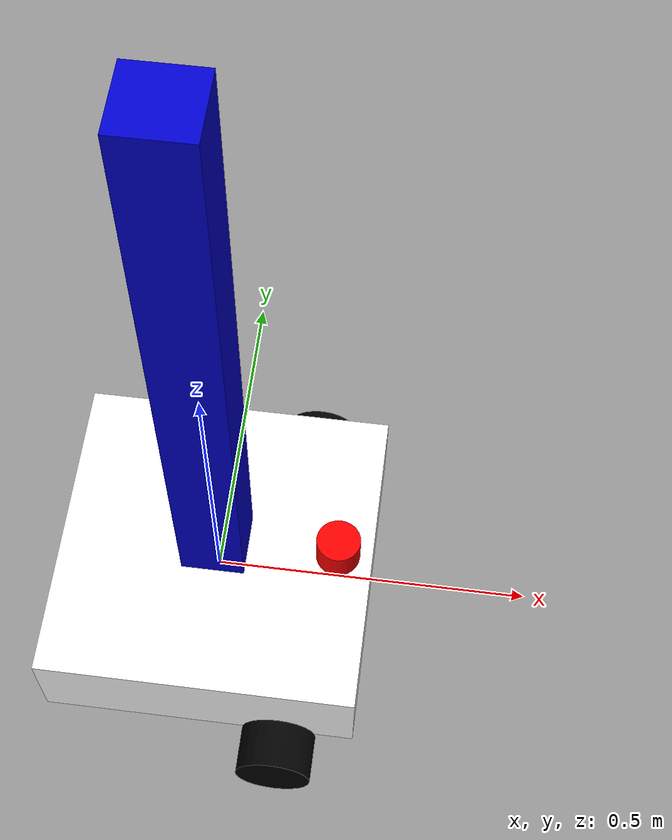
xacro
<?xml version="1.0"?>

<robot xmlns:xacro="http://www.ros.org/wiki/xacro" >

    <material name="blue">
      <color rgba="0 0 0.8 1"/>
    </material>
    <material name="white">
      <color rgba="1 1 1 1"/>
    </material>
    <material name="black">
      <color rgba="0 0 0 1"/>
    </material>
    <material name="green">
        <color rgba="0 0.8 0 1"/>
    </material>
    <material name="red">
        <color rgba="1 0 0 1"/>
    </material>

    <!--INERTIAL BOX MACRO-->
    <xacro:macro name="inertial_box" params="mass x y z">
        <inertial>
            <origin xyz="0.0 0.0 0.0" rpy="0.0 0.0 0.0"/>
            <mass value="${mass}" />
            <inertia ixx="${(1/12) * mass * (y*y+z*z)}" ixy="0.0" ixz="0.0"
                    iyy="${(1/12) * mass * (x*x+z*z)}" iyz="0.0"
                    izz="${(1/12) * mass * (x*x+y*y)}" />
        </inertial>
    </xacro:macro>
    <!--INERTIAL CYLINDER MACRO-->
    <xacro:macro name="inertial_cylinder" params="mass length radius">
        <inertial>
            <origin xyz="0.0 0.0 0.0" rpy="0.0 0.0 0.0"/>
            <mass value="${mass}" />
            <inertia ixx="${(1/12) * mass * (3*radius*radius + length*length)}" ixy="0.0" ixz="0.0"
                    iyy="${(1/12) * mass * (3*radius*radius + length*length)}" iyz="0.0"
                    izz="${(1/2) * mass * (radius*radius)}" />
        </inertial>
    </xacro:macro>
    <!--INERTIAL SPHERE MACRO-->
    <xacro:macro name="inertial_sphere" params="mass radius">
        <inertial>
            <origin xyz="0.0 0.0 0.0" rpy="0.0 0.0 0.0"/>
            <mass value="${mass}" />
            <inertia ixx="${(2/5) * mass * (radius*radius)}" ixy="0.0" ixz="0.0"
                    iyy="${(2/5) * mass * (radius*radius)}" iyz="0.0"
                    izz="${(2/5) * mass * (radius*radius)}" />
        </inertial>
    </xacro:macro>

    <!--BASE_LINK-->
    <link name="base_link">

    </link>

    <!--CHASSIS OF THE ROBOT-->
    <link name="chassis_link">
        <visual>
            <geometry>
                <box size="0.5 0.5 0.15"/>
            </geometry>
            <material name="white"/>
            <origin xyz="0.0 0.0 0.0" rpy="0.0 0.0 0.0"/>
        </visual>
        <collision>
            <geometry>
                <box size="0.5 0.5 0.15"/>
            </geometry>
            <origin xyz="0.0 0.0 0.0" rpy="0.0 0.0 0.0"/>
        </collision>
        <xacro:inertial_box mass="5" x="0.5" y="0.5" z="0.15" />
    </link>

    <joint name="chassis_joint" type="fixed">
        <origin xyz="0 0 0" rpy="0 0 0" />
        <parent link="base_link" />
        <child link="chassis_link" />
        <axis xyz="0 0 0" />
    </joint>

    <gazebo reference="chassis_link">
      <material>Gazebo/Orange</material>
    </gazebo>

    <!--RIGHT WHEEL-->
    <link name="right_wheel">
        <visual>
            <geometry>
                <cylinder radius="0.06" length="0.075"/>
            </geometry>
            <material name="black"/>
            <origin rpy="1.5708 0 0" xyz="0 0 0"/>
        </visual>
        <collision>
            <geometry>
            <cylinder radius="0.06" length="0.075"/>
            </geometry>
            <origin rpy="1.5708 0 0" xyz="0 0 0"/>
        </collision>
        <xacro:inertial_cylinder mass="0.2" length="0.075" radius="0.06" />
    </link>

    <joint name="right_wheel_joint" type="continuous">
        <origin xyz="0.13 0.2875 -0.09" rpy="0 0 0" />
        <parent link="base_link" />
        <child link="right_wheel" />
        <axis xyz="0 1 0" />
    </joint>

    <gazebo reference="right_wheel">
      <material>Gazebo/Black</material>
    </gazebo>

    <!--LEFHT WHEEL-->
    <link name="left_wheel">
        <visual>
            <geometry>
                <cylinder radius="0.06" length="0.075"/>
            </geometry>
            <material name="black"/>
            <origin rpy="1.5708 0 0" xyz="0 0 0"/>
        </visual>
        <collision>
            <origin rpy="1.5708 0 0" xyz="0 0 0"/>
            <geometry>
                <cylinder radius="0.06" length="0.075"/>
            </geometry>
        </collision>
        <xacro:inertial_cylinder mass="0.2" length="0.075" radius="0.06" />
    </link>

    <joint name="left_wheel_joint" type="continuous">
        <origin xyz="0.13 -0.2875 -0.09" rpy="0 0 0" />
        <parent link="base_link" />
        <child link="left_wheel" />
        <axis xyz="0 1 0" />
    </joint>

    <gazebo reference="left_wheel">
      <material>Gazebo/Black</material>
    </gazebo>

    <!--LIGHT TUBE-->
    <link name="light_tube">
        <visual>
            <geometry>
                <box size="0.1 0.1 1.0"/>
            </geometry>
            <material name="blue"/>
            <origin rpy="0 0 0" xyz="0 0 0"/>
        </visual>
        <collision>
            <origin rpy="0 0 0" xyz="0 0 0"/>
            <geometry>
                <box size="0.1 0.1 1.0"/>
            </geometry>
        </collision>
        <xacro:inertial_box mass="3" x="0.1" y="0.1" z="1.0" />
    </link>

    <joint name="light_tube_joint" type="fixed">
        <origin xyz="0.0 0.0 0.575" rpy="0 0 0" />
        <parent link="chassis_link" />
        <child link="light_tube" />
        <axis xyz="0 0 0" />
    </joint>

    <gazebo reference="light_tube">
      <material>Gazebo/Blue</material>
    </gazebo>

    <!--CASTER_WHEEL-->
    <link name="caster_wheel">
        <visual>
            <geometry>
                <sphere radius="0.035"/>
            </geometry>
            <material name="green"/>
            <origin rpy="0 0 0" xyz="0 0 0"/>
        </visual>
        <collision>
            <origin rpy="0 0 0" xyz="0 0 0"/>
            <geometry>
                <sphere radius="0.035"/>
            </geometry>
        </collision>
        <xacro:inertial_sphere mass="0.1" radius="0.035" />
    </link>

    <joint name="caster_wheel_joint" type="fixed">
        <origin xyz="-0.25 0 -0.110" rpy="0 0 0" />
        <parent link="chassis_link" />
        <child link="caster_wheel" />
        <axis xyz="0 0 0" />
    </joint>

    <gazebo reference="caster_wheel">
        <material>Gazebo/Green</material>
        <mu1 value="0.001"/>
        <mu2 value="0.001"/>
    </gazebo>

    <!--RPLIDAR-->
    <link name="laser_frame">
        <visual>
            <geometry>
                <cylinder radius="0.035" length="0.055"/>
            </geometry>
            <material name="red"/>
            <origin xyz="0 0 0"/>
        </visual>
        <collision>
            <geometry>
                <cylinder radius="0.035" length="0.055"/>
            </geometry>
        </collision>
        <xacro:inertial_cylinder mass="0.1" length="0.055" radius="0.035" />
    </link>

    <joint name="laser_joint" type="fixed">
        <parent link="chassis_link"/>
        <child link="laser_frame"/>
        <origin xyz="0.195 0 0.1025" rpy="0 0 0"/>
    </joint>

    <gazebo reference="laser_frame">
        <material>Gazebo/Red</material>
        <sensor name="laser" type="ray">
            <pose> 0 0 0 0 0 0 </pose>
            <visualize>true</visualize>
            <update_rate>10</update_rate>
            <ray>
                <scan>
                    <horizontal>
                        <samples>360</samples>
                        <min_angle>-3.14159</min_angle>
                        <max_angle>3.14159</max_angle>
                    </horizontal>
                </scan>
                <range>
                    <min>0.3</min>
                    <max>12</max>
                </range>
            </ray>
            <plugin name="laser_controller" filename="libgazebo_ros_laser.so">
                <topicName>/scan</topicName>
                <frameName>laser_frame</frameName>
            </plugin>
        </sensor>
    </gazebo>

</robot>
